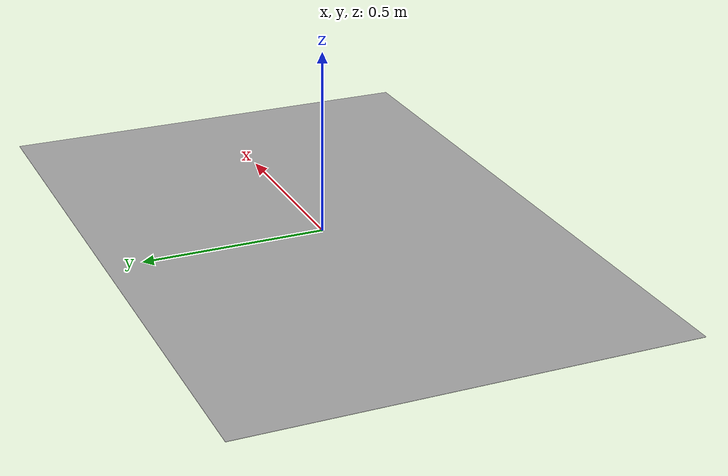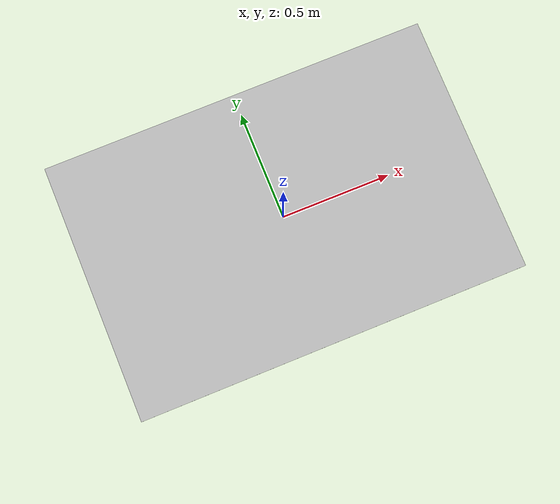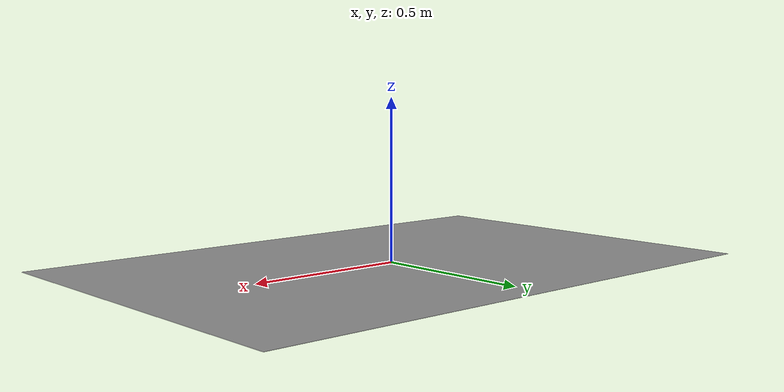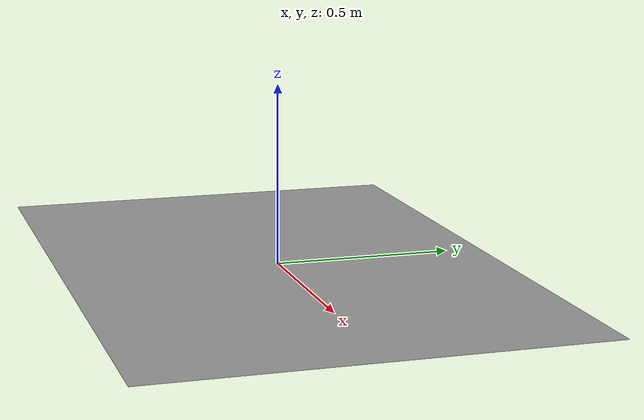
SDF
<?xml version="1.6" encoding="UTF-8"?>
<sdf version="1.4">
   <model name="landing_box">
      <static>true</static>
      <link name="link">
         <collision name="collision">
            <geometry>
               <plane>
                  <normal>0 0 1</normal>
                  <size>1.8 1.2</size>
               </plane>
            </geometry>
            <surface>
               <friction>
                  <ode>
                     <mu>100</mu>
                     <mu2>50</mu2>
                  </ode>
               </friction>
            </surface>
         </collision>
         <visual name="visual">
            <cast_shadows>false</cast_shadows>
            <geometry>
               <plane>
                  <normal>0 0 1</normal>
                  <size>1.8 1.2</size>
               </plane>
            </geometry>
            <material>
               <script>
                  <uri>model://landing_box/materials/scripts</uri>
                  <uri>model://landing_box/materials/textures/</uri>
                  <name>landing_box/Image</name>
               </script>
            </material>
         </visual>
      </link>
   </model>
</sdf>
